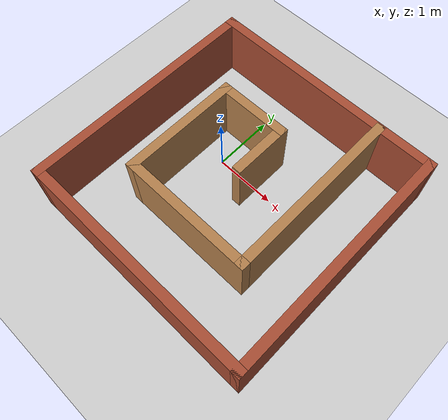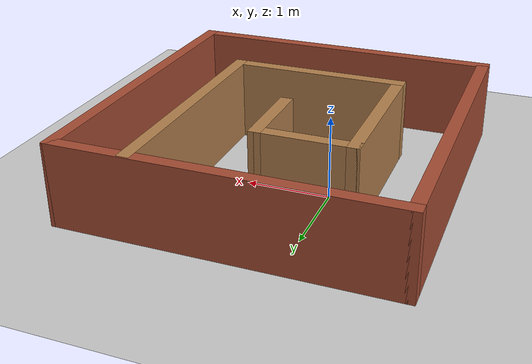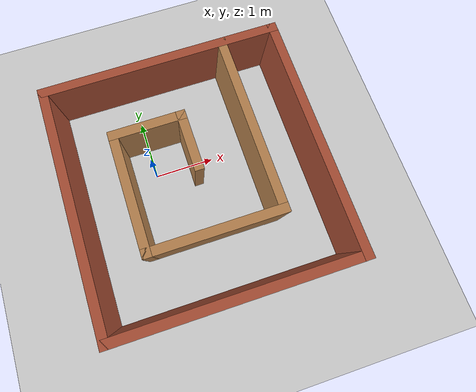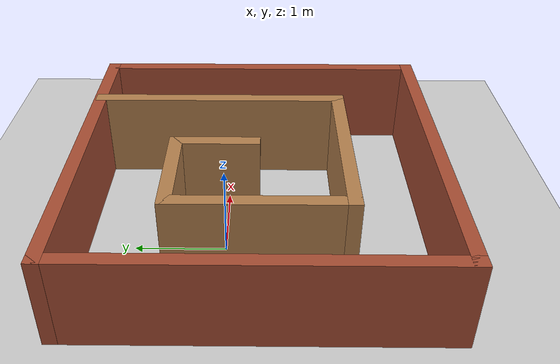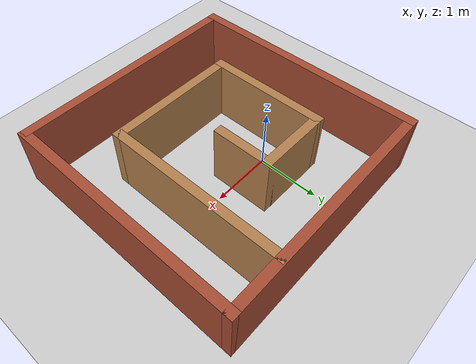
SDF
<sdf version="1.6">
 <world name="default">
  <light name="sun" type="directional">
   <pose>0 0 10 0 -0 0</pose>
   <diffuse>0.8 0.8 0.8 1</diffuse>
   <specular>0.2 0.2 0.2 1</specular>
   <attenuation>
    <range>1000</range>
    <constant>0.9</constant>
    <linear>0.01</linear>
    <quadratic>0.001</quadratic>
   </attenuation>
   <direction>-0.5 0.1 -0.9</direction>
  </light>
  <model name="ground_plane">
   <static>1</static>
   <link name="link">
    <collision name="collision">
     <geometry><plane><normal>0 0 1</normal><size>100 100</size></plane></geometry>
     <surface>
      <contact><collide_bitmask>65535</collide_bitmask></contact>
      <friction><ode><mu>100</mu><mu2>50</mu2></ode></friction>
     </surface>
    </collision>
    <visual name="visual">
     <cast_shadows>0</cast_shadows>
     <geometry><plane><normal>0 0 1</normal><size>100 100</size></plane></geometry>
     <material>
      <script><uri>file://media/materials/scripts/gazebo.material</uri><name>Gazebo/Grey</name></script>
     </material>
    </visual>
   </link>
  </model>
  <gravity>0 0 -9.8</gravity>
  <magnetic_field>6e-06 2.3e-05 -4.2e-05</magnetic_field>
  <atmosphere type="adiabatic"/>
  <physics name="default_physics" default="0" type="ode">
   <max_step_size>0.001</max_step_size>
   <real_time_factor>1</real_time_factor>
   <real_time_update_rate>1000</real_time_update_rate>
  </physics>
  <scene><ambient>0.4 0.4 0.4 1</ambient><background>0.7 0.7 0.7 1</background><shadows>1</shadows></scene>
  <audio><device>default</device></audio>
  <spherical_coordinates>
   <surface_model>EARTH_WGS84</surface_model>
   <latitude_deg>0</latitude_deg>
   <longitude_deg>0</longitude_deg>
   <elevation>0</elevation>
   <heading_deg>0</heading_deg>
  </spherical_coordinates>
  <model name="my_building">
   <pose>0.613161 -0.344801 0 0 -0 0</pose>
   <link name="Wall_0">
    <collision name="Wall_0_Collision">
     <geometry><box><size>4 0.15 1</size></box></geometry>
     <pose>0 0 0.5 0 -0 0</pose>
    </collision>
    <visual name="Wall_0_Visual">
     <pose>0 0 0.5 0 -0 0</pose>
     <geometry><box><size>4 0.15 1</size></box></geometry>
     <material>
      <script><uri>file://media/materials/scripts/gazebo.material</uri><name>Gazebo/Bricks</name></script>
      <ambient>1 1 1 1</ambient>
     </material>
     <meta><layer>0</layer></meta>
    </visual>
    <pose>-0 1.925 0 0 -0 0</pose>
   </link>
   <link name="Wall_10">
    <collision name="Wall_10_Collision">
     <geometry><box><size>3 0.15 1</size></box></geometry>
     <pose>0 0 0.5 0 -0 0</pose>
    </collision>
    <visual name="Wall_10_Visual">
     <pose>0 0 0.5 0 -0 0</pose>
     <geometry><box><size>3 0.15 1</size></box></geometry>
     <material>
      <script><uri>file://media/materials/scripts/gazebo.material</uri><name>Gazebo/Wood</name></script>
      <ambient>1 1 1 1</ambient>
     </material>
     <meta><layer>0</layer></meta>
    </visual>
    <pose>1.04 0.48 0 0 -0 -1.5708</pose>
   </link>
   <link name="Wall_11">
    <collision name="Wall_11_Collision">
     <geometry><box><size>2.25 0.15 1</size></box></geometry>
     <pose>0 0 0.5 0 -0 0</pose>
    </collision>
    <visual name="Wall_11_Visual">
     <pose>0 0 0.5 0 -0 0</pose>
     <geometry><box><size>2.25 0.15 1</size></box></geometry>
     <material>
      <script><uri>file://media/materials/scripts/gazebo.material</uri><name>Gazebo/Wood</name></script>
      <ambient>1 1 1 1</ambient>
     </material>
     <meta><layer>0</layer></meta>
    </visual>
    <pose>-0.01 -0.945 0 0 -0 3.14159</pose>
   </link>
   <link name="Wall_12">
    <collision name="Wall_12_Collision">
     <geometry><box><size>2 0.15 1</size></box></geometry>
     <pose>0 0 0.5 0 -0 0</pose>
    </collision>
    <visual name="Wall_12_Visual">
     <pose>0 0 0.5 0 -0 0</pose>
     <geometry><box><size>2 0.15 1</size></box></geometry>
     <material>
      <script><uri>file://media/materials/scripts/gazebo.material</uri><name>Gazebo/Wood</name></script>
      <ambient>1 1 1 1</ambient>
     </material>
     <meta><layer>0</layer></meta>
    </visual>
    <pose>-1.06 -0.02 0 0 -0 1.5708</pose>
   </link>
   <link name="Wall_16">
    <collision name="Wall_16_Collision">
     <geometry><box><size>1.25 0.15 1</size></box></geometry>
     <pose>0 0 0.5 0 -0 0</pose>
    </collision>
    <visual name="Wall_16_Visual">
     <pose>0 0 0.5 0 -0 0</pose>
     <geometry><box><size>1.25 0.15 1</size></box></geometry>
     <material>
      <script><uri>file://media/materials/scripts/gazebo.material</uri><name>Gazebo/Wood</name></script>
      <ambient>1 1 1 1</ambient>
     </material>
     <meta><layer>0</layer></meta>
    </visual>
    <pose>-0.51 0.905 0 0 -0 0</pose>
   </link>
   <link name="Wall_17">
    <collision name="Wall_17_Collision">
     <geometry><box><size>1 0.15 1</size></box></geometry>
     <pose>0 0 0.5 0 -0 0</pose>
    </collision>
    <visual name="Wall_17_Visual">
     <pose>0 0 0.5 0 -0 0</pose>
     <geometry><box><size>1 0.15 1</size></box></geometry>
     <material>
      <script><uri>file://media/materials/scripts/gazebo.material</uri><name>Gazebo/Wood</name></script>
      <ambient>1 1 1 1</ambient>
     </material>
     <meta><layer>0</layer></meta>
    </visual>
    <pose>0.04 0.48 0 0 -0 -1.5708</pose>
   </link>
   <link name="Wall_6">
    <collision name="Wall_6_Collision">
     <geometry><box><size>4 0.15 1</size></box></geometry>
     <pose>0 0 0.5 0 -0 0</pose>
    </collision>
    <visual name="Wall_6_Visual">
     <pose>0 0 0.5 0 -0 0</pose>
     <geometry><box><size>4 0.15 1</size></box></geometry>
     <material>
      <script><uri>file://media/materials/scripts/gazebo.material</uri><name>Gazebo/Bricks</name></script>
      <ambient>1 1 1 1</ambient>
     </material>
     <meta><layer>0</layer></meta>
    </visual>
    <pose>-1.925 0 0 0 -0 -1.5708</pose>
   </link>
   <link name="Wall_7">
    <collision name="Wall_7_Collision">
     <geometry><box><size>4 0.15 1</size></box></geometry>
     <pose>0 0 0.5 0 -0 0</pose>
    </collision>
    <visual name="Wall_7_Visual">
     <pose>0 0 0.5 0 -0 0</pose>
     <geometry><box><size>4 0.15 1</size></box></geometry>
     <material>
      <script><uri>file://media/materials/scripts/gazebo.material</uri><name>Gazebo/Bricks</name></script>
      <ambient>1 1 1 1</ambient>
     </material>
     <meta><layer>0</layer></meta>
    </visual>
    <pose>-0 -1.925 0 0 -0 0</pose>
   </link>
   <link name="Wall_8">
    <collision name="Wall_8_Collision">
     <geometry><box><size>4 0.15 1</size></box></geometry>
     <pose>0 0 0.5 0 -0 0</pose>
    </collision>
    <visual name="Wall_8_Visual">
     <pose>0 0 0.5 0 -0 0</pose>
     <geometry><box><size>4 0.15 1</size></box></geometry>
     <material>
      <script><uri>file://media/materials/scripts/gazebo.material</uri><name>Gazebo/Bricks</name></script>
      <ambient>1 1 1 1</ambient>
     </material>
     <meta><layer>0</layer></meta>
    </visual>
    <pose>1.925 0 0 0 -0 1.5708</pose>
   </link>
   <static>1</static>
  </model>
 </world>
</sdf>
